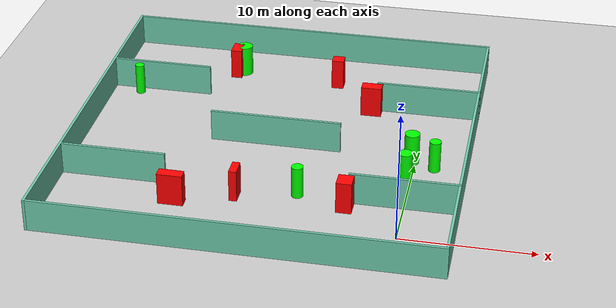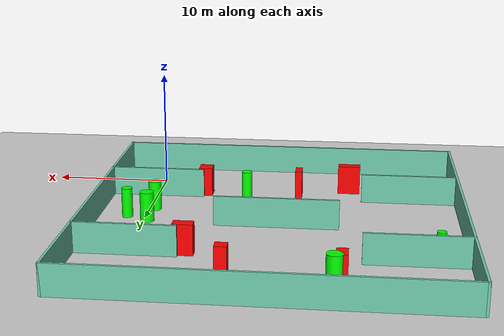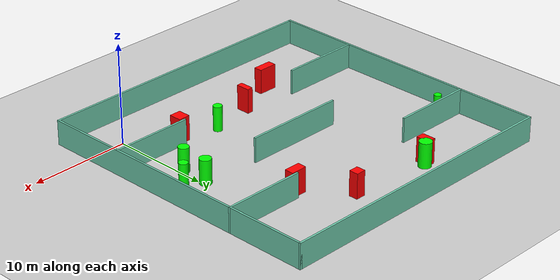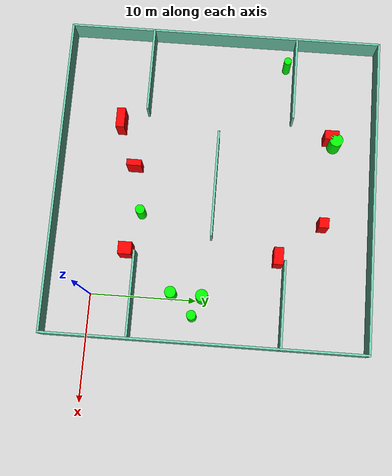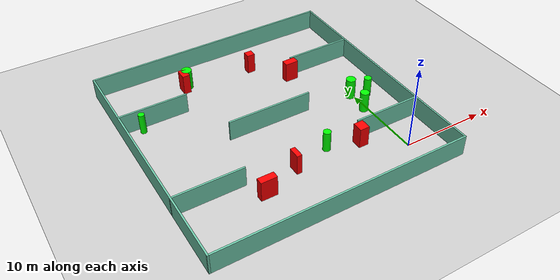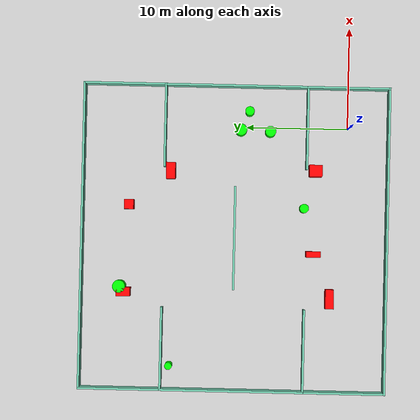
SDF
<sdf version="1.7">
 <world name="default">
  <light name="sun" type="directional">
   <pose>0 0 10 0 -0 0</pose>
   <diffuse>0.8 0.8 0.8 1</diffuse>
   <specular>0.2 0.2 0.2 1</specular>
   <attenuation>
    <range>1000</range>
    <constant>0.9</constant>
    <linear>0.01</linear>
    <quadratic>0.001</quadratic>
   </attenuation>
   <direction>-0.5 0.1 -0.9</direction>
   <spot><inner_angle>0</inner_angle><outer_angle>0</outer_angle><falloff>0</falloff></spot>
  </light>
  <model name="ground_plane">
   <static>1</static>
   <link name="link">
    <collision name="collision">
     <geometry><plane><normal>0 0 1</normal><size>100 100</size></plane></geometry>
     <surface>
      <contact><collide_bitmask>65535</collide_bitmask></contact>
      <friction><ode><mu>100</mu><mu2>50</mu2></ode></friction>
     </surface>
    </collision>
    <visual name="visual">
     <cast_shadows>0</cast_shadows>
     <geometry><plane><normal>0 0 1</normal><size>100 100</size></plane></geometry>
     <material>
      <script><uri>file://media/materials/scripts/gazebo.material</uri><name>Gazebo/Grey</name></script>
     </material>
    </visual>
   </link>
  </model>
  <gravity>0 0 -9.8</gravity>
  <magnetic_field>6e-06 2.3e-05 -4.2e-05</magnetic_field>
  <atmosphere type="adiabatic"/>
  <physics type="ode">
   <max_step_size>0.001</max_step_size>
   <real_time_factor>1</real_time_factor>
   <real_time_update_rate>1000</real_time_update_rate>
  </physics>
  <scene><ambient>0.4 0.4 0.4 1</ambient><background>0.7 0.7 0.7 1</background><shadows>1</shadows></scene>
  <spherical_coordinates>
   <surface_model>EARTH_WGS84</surface_model>
   <latitude_deg>0</latitude_deg>
   <longitude_deg>0</longitude_deg>
   <elevation>0</elevation>
   <heading_deg>0</heading_deg>
  </spherical_coordinates>
  <model name="my_base_walls">
   <link name="Wall_10">
    <collision name="Wall_10_Collision">
     <geometry><box><size>8.2 0.2 2.5</size></box></geometry>
     <pose>0 0 1.25 0 -0 0</pose>
    </collision>
    <visual name="Wall_10_Visual">
     <pose>0 0 1.25 0 -0 0</pose>
     <geometry><box><size>8.2 0.2 2.5</size></box></geometry>
     <material>
      <script><uri>file://media/materials/scripts/gazebo.material</uri><name>Gazebo/Grey</name></script>
      <ambient>0.435294 0.796078 0.67451 1</ambient>
     </material>
     <meta><layer>0</layer></meta>
    </visual>
    <pose>-11 -7 0 0 -0 0</pose>
   </link>
   <link name="Wall_12">
    <collision name="Wall_12_Collision">
     <geometry><box><size>8.2 0.2 2.5</size></box></geometry>
     <pose>0 0 1.25 0 -0 0</pose>
    </collision>
    <visual name="Wall_12_Visual">
     <pose>0 0 1.25 0 -0 0</pose>
     <geometry><box><size>8.2 0.2 2.5</size></box></geometry>
     <material>
      <script><uri>file://media/materials/scripts/gazebo.material</uri><name>Gazebo/Grey</name></script>
      <ambient>0.435294 0.796078 0.67451 1</ambient>
     </material>
     <meta><layer>0</layer></meta>
    </visual>
    <pose>-11 7 0 0 -0 0</pose>
   </link>
   <link name="Wall_14">
    <collision name="Wall_14_Collision">
     <geometry><box><size>8.2 0.2 2.5</size></box></geometry>
     <pose>0 0 1.25 0 -0 0</pose>
    </collision>
    <visual name="Wall_14_Visual">
     <pose>0 0 1.25 0 -0 0</pose>
     <geometry><box><size>8.2 0.2 2.5</size></box></geometry>
     <material>
      <script><uri>file://media/materials/scripts/gazebo.material</uri><name>Gazebo/Grey</name></script>
      <ambient>0.435294 0.796078 0.67451 1</ambient>
     </material>
     <meta><layer>0</layer></meta>
    </visual>
    <pose>11 7 0 0 -0 3.14159</pose>
   </link>
   <link name="Wall_16">
    <collision name="Wall_16_Collision">
     <geometry><box><size>10.2 0.2 2.5</size></box></geometry>
     <pose>0 0 1.25 0 -0 0</pose>
    </collision>
    <visual name="Wall_16_Visual">
     <pose>0 0 1.25 0 -0 0</pose>
     <geometry><box><size>10.2 0.2 2.5</size></box></geometry>
     <material>
      <script><uri>file://media/materials/scripts/gazebo.material</uri><name>Gazebo/Grey</name></script>
      <ambient>0.435294 0.796078 0.67451 1</ambient>
     </material>
     <meta><layer>0</layer></meta>
    </visual>
    <pose>0 0 0 0 -0 3.14159</pose>
   </link>
   <link name="Wall_2">
    <collision name="Wall_2_Collision">
     <geometry><box><size>30.2 0.2 2.5</size></box></geometry>
     <pose>0 0 1.25 0 -0 0</pose>
    </collision>
    <visual name="Wall_2_Visual">
     <pose>0 0 1.25 0 -0 0</pose>
     <geometry><box><size>30.2 0.2 2.5</size></box></geometry>
     <material>
      <script><uri>file://media/materials/scripts/gazebo.material</uri><name>Gazebo/Grey</name></script>
      <ambient>0.435294 0.796078 0.67451 1</ambient>
     </material>
     <meta><layer>0</layer></meta>
    </visual>
    <pose>0 -15 0 0 -0 3.14159</pose>
   </link>
   <link name="Wall_3">
    <collision name="Wall_3_Collision">
     <geometry><box><size>30.2 0.2 2.5</size></box></geometry>
     <pose>0 0 1.25 0 -0 0</pose>
    </collision>
    <visual name="Wall_3_Visual">
     <pose>0 0 1.25 0 -0 0</pose>
     <geometry><box><size>30.2 0.2 2.5</size></box></geometry>
     <material>
      <script><uri>file://media/materials/scripts/gazebo.material</uri><name>Gazebo/Grey</name></script>
      <ambient>0.435294 0.796078 0.67451 1</ambient>
     </material>
     <meta><layer>0</layer></meta>
    </visual>
    <pose>-15 0 0 0 -0 1.5708</pose>
   </link>
   <link name="Wall_4">
    <collision name="Wall_4_Collision">
     <geometry><box><size>30.2 0.2 2.5</size></box></geometry>
     <pose>0 0 1.25 0 -0 0</pose>
    </collision>
    <visual name="Wall_4_Visual">
     <pose>0 0 1.25 0 -0 0</pose>
     <geometry><box><size>30.2 0.2 2.5</size></box></geometry>
     <material>
      <script><uri>file://media/materials/scripts/gazebo.material</uri><name>Gazebo/Grey</name></script>
      <ambient>0.435294 0.796078 0.67451 1</ambient>
     </material>
     <meta><layer>0</layer></meta>
    </visual>
    <pose>0 15 0 0 -0 0</pose>
   </link>
   <link name="Wall_6">
    <collision name="Wall_6_Collision">
     <geometry><box><size>30.2 0.2 2.5</size></box></geometry>
     <pose>0 0 1.25 0 -0 0</pose>
    </collision>
    <visual name="Wall_6_Visual">
     <pose>0 0 1.25 0 -0 0</pose>
     <geometry><box><size>30.2 0.2 2.5</size></box></geometry>
     <material>
      <script><uri>file://media/materials/scripts/gazebo.material</uri><name>Gazebo/Grey</name></script>
      <ambient>0.435294 0.796078 0.67451 1</ambient>
     </material>
     <meta><layer>0</layer></meta>
    </visual>
    <pose>15 0 0 0 -0 1.5708</pose>
   </link>
   <link name="Wall_8">
    <collision name="Wall_8_Collision">
     <geometry><box><size>8.2 0.2 2.5</size></box></geometry>
     <pose>0 0 1.25 0 -0 0</pose>
    </collision>
    <visual name="Wall_8_Visual">
     <pose>0 0 1.25 0 -0 0</pose>
     <geometry><box><size>8.2 0.2 2.5</size></box></geometry>
     <material>
      <script><uri>file://media/materials/scripts/gazebo.material</uri><name>Gazebo/Grey</name></script>
      <ambient>0.435294 0.796078 0.67451 1</ambient>
     </material>
     <meta><layer>0</layer></meta>
    </visual>
    <pose>11 -7 0 0 -0 3.14159</pose>
   </link>
   <static>1</static>
   <pose>-11 11 0 0 -0 0</pose>
  </model>
  <model name="cylinder1">
   <static>1</static>
   <link name="link">
    <inertial>
     <mass>1</mass>
     <inertia><ixx>0.5</ixx><ixy>0</ixy><ixz>0</ixz><iyy>0.5</iyy><iyz>0</iyz><izz>1</izz></inertia>
    </inertial>
    <collision name="collision">
     <geometry><cylinder><radius>0.4456386294573484</radius><length>2.5</length></cylinder></geometry>
    </collision>
    <visual name="visual">
     <geometry><cylinder><radius>0.4456386294573484</radius><length>2.5</length></cylinder></geometry>
     <material>
      <ambient>0 1 0 1</ambient>
      <diffuse>0 1 0 1</diffuse>
      <specular>0.1 0.1 0.1 1</specular>
      <emissive>0 0 0 0</emissive>
     </material>
    </visual>
   </link>
   <pose>1.5292812261973445 9.717126818259276 1.25 0 0 0</pose>
  </model>
  <model name="cylinder2">
   <static>1</static>
   <link name="link">
    <inertial>
     <mass>1</mass>
     <inertia><ixx>0.5</ixx><ixy>0</ixy><ixz>0</ixz><iyy>0.5</iyy><iyz>0</iyz><izz>1</izz></inertia>
    </inertial>
    <collision name="collision">
     <geometry><cylinder><radius>0.44531292203563566</radius><length>2.5</length></cylinder></geometry>
    </collision>
    <visual name="visual">
     <geometry><cylinder><radius>0.44531292203563566</radius><length>2.5</length></cylinder></geometry>
     <material>
      <ambient>0 1 0 1</ambient>
      <diffuse>0 1 0 1</diffuse>
      <specular>0.1 0.1 0.1 1</specular>
      <emissive>0 0 0 0</emissive>
     </material>
    </visual>
   </link>
   <pose>-7.936862512632107 4.191914782025638 1.25 0 0 0</pose>
  </model>
  <model name="cylinder3">
   <static>1</static>
   <link name="link">
    <inertial>
     <mass>1</mass>
     <inertia><ixx>0.5</ixx><ixy>0</ixy><ixz>0</ixz><iyy>0.5</iyy><iyz>0</iyz><izz>1</izz></inertia>
    </inertial>
    <collision name="collision">
     <geometry><cylinder><radius>0.6266930412842626</radius><length>2.5</length></cylinder></geometry>
    </collision>
    <visual name="visual">
     <geometry><cylinder><radius>0.6266930412842626</radius><length>2.5</length></cylinder></geometry>
     <material>
      <ambient>0 1 0 1</ambient>
      <diffuse>0 1 0 1</diffuse>
      <specular>0.1 0.1 0.1 1</specular>
      <emissive>0 0 0 0</emissive>
     </material>
    </visual>
   </link>
   <pose>-15.965332265038363 22.224577644137653 1.25 0 0 0</pose>
  </model>
  <model name="cylinder4">
   <static>1</static>
   <link name="link">
    <inertial>
     <mass>1</mass>
     <inertia><ixx>0.5</ixx><ixy>0</ixy><ixz>0</ixz><iyy>0.5</iyy><iyz>0</iyz><izz>1</izz></inertia>
    </inertial>
    <collision name="collision">
     <geometry><cylinder><radius>0.5761014275932677</radius><length>2.5</length></cylinder></geometry>
    </collision>
    <visual name="visual">
     <geometry><cylinder><radius>0.5761014275932677</radius><length>2.5</length></cylinder></geometry>
     <material>
      <ambient>0 1 0 1</ambient>
      <diffuse>0 1 0 1</diffuse>
      <specular>0.1 0.1 0.1 1</specular>
      <emissive>0 0 0 0</emissive>
     </material>
    </visual>
   </link>
   <pose>-0.31133972802179244 10.542605677727044 1.25 0 0 0</pose>
  </model>
  <model name="cylinder5">
   <static>1</static>
   <link name="link">
    <inertial>
     <mass>1</mass>
     <inertia><ixx>0.5</ixx><ixy>0</ixy><ixz>0</ixz><iyy>0.5</iyy><iyz>0</iyz><izz>1</izz></inertia>
    </inertial>
    <collision name="collision">
     <geometry><cylinder><radius>0.3615455737426825</radius><length>2.5</length></cylinder></geometry>
    </collision>
    <visual name="visual">
     <geometry><cylinder><radius>0.3615455737426825</radius><length>2.5</length></cylinder></geometry>
     <material>
      <ambient>0 1 0 1</ambient>
      <diffuse>0 1 0 1</diffuse>
      <specular>0.1 0.1 0.1 1</specular>
      <emissive>0 0 0 0</emissive>
     </material>
    </visual>
   </link>
   <pose>-23.666276819289276 17.207375518853077 1.25 0 0 0</pose>
  </model>
  <model name="cylinder6">
   <static>1</static>
   <link name="link">
    <inertial>
     <mass>1</mass>
     <inertia><ixx>0.5</ixx><ixy>0</ixy><ixz>0</ixz><iyy>0.5</iyy><iyz>0</iyz><izz>1</izz></inertia>
    </inertial>
    <collision name="collision">
     <geometry><cylinder><radius>0.5272514219149655</radius><length>2.5</length></cylinder></geometry>
    </collision>
    <visual name="visual">
     <geometry><cylinder><radius>0.5272514219149655</radius><length>2.5</length></cylinder></geometry>
     <material>
      <ambient>0 1 0 1</ambient>
      <diffuse>0 1 0 1</diffuse>
      <specular>0.1 0.1 0.1 1</specular>
      <emissive>0 0 0 0</emissive>
     </material>
    </visual>
   </link>
   <pose>-0.4348142796505954 7.643534196259862 1.25 0 0 0</pose>
  </model>
  <model name="box1">
   <static>1</static>
   <link name="link">
    <inertial>
     <mass>1</mass>
     <inertia><ixx>0.083</ixx><ixy>0</ixy><ixz>0</ixz><iyy>0.083</iyy><iyz>0</iyz><izz>0.083</izz></inertia>
    </inertial>
    <collision name="collision">
     <geometry><box><size>1.6222661233023463 0.8963334421472648 2.5</size></box></geometry>
    </collision>
    <visual name="visual">
     <geometry><box><size>1.6222661233023463 0.8963334421472648 2.5</size></box></geometry>
     <material>
      <ambient>1 0 0 1</ambient>
      <diffuse>1 0 0 1</diffuse>
      <specular>0.1 0.1 0.1 1</specular>
      <emissive>0 0 0 0</emissive>
     </material>
    </visual>
    <sensor name="my_contact" type="contact">
     <contact><collision>box_collision</collision><topic>__default_topic__</topic></contact>
    </sensor>
   </link>
   <pose>-4.470224382734202 17.367084895094695 1.25 0 0 0</pose>
  </model>
  <model name="box2">
   <static>1</static>
   <link name="link">
    <inertial>
     <mass>1</mass>
     <inertia><ixx>0.083</ixx><ixy>0</ixy><ixz>0</ixz><iyy>0.083</iyy><iyz>0</iyz><izz>0.083</izz></inertia>
    </inertial>
    <collision name="collision">
     <geometry><box><size>0.9579325828076858 0.9162196533137005 2.5</size></box></geometry>
    </collision>
    <visual name="visual">
     <geometry><box><size>0.9579325828076858 0.9162196533137005 2.5</size></box></geometry>
     <material>
      <ambient>1 0 0 1</ambient>
      <diffuse>1 0 0 1</diffuse>
      <specular>0.1 0.1 0.1 1</specular>
      <emissive>0 0 0 0</emissive>
     </material>
    </visual>
    <sensor name="my_contact" type="contact">
     <contact><collision>box_collision</collision><topic>__default_topic__</topic></contact>
    </sensor>
   </link>
   <pose>-7.874527667024799 21.41128445310145 1.25 0 0 0</pose>
  </model>
  <model name="box3">
   <static>1</static>
   <link name="link">
    <inertial>
     <mass>1</mass>
     <inertia><ixx>0.083</ixx><ixy>0</ixy><ixz>0</ixz><iyy>0.083</iyy><iyz>0</iyz><izz>0.083</izz></inertia>
    </inertial>
    <collision name="collision">
     <geometry><box><size>1.1630928919015573 1.265461050111168 2.5</size></box></geometry>
    </collision>
    <visual name="visual">
     <geometry><box><size>1.1630928919015573 1.265461050111168 2.5</size></box></geometry>
     <material>
      <ambient>1 0 0 1</ambient>
      <diffuse>1 0 0 1</diffuse>
      <specular>0.1 0.1 0.1 1</specular>
      <emissive>0 0 0 0</emissive>
     </material>
    </visual>
    <sensor name="my_contact" type="contact">
     <contact><collision>box_collision</collision><topic>__default_topic__</topic></contact>
    </sensor>
   </link>
   <pose>-4.211111116400621 3.118229679560799 1.25 0 0 0</pose>
  </model>
  <model name="box4">
   <static>1</static>
   <link name="link">
    <inertial>
     <mass>1</mass>
     <inertia><ixx>0.083</ixx><ixy>0</ixy><ixz>0</ixz><iyy>0.083</iyy><iyz>0</iyz><izz>0.083</izz></inertia>
    </inertial>
    <collision name="collision">
     <geometry><box><size>0.5875311518161475 1.40523436092673 2.5</size></box></geometry>
    </collision>
    <visual name="visual">
     <geometry><box><size>0.5875311518161475 1.40523436092673 2.5</size></box></geometry>
     <material>
      <ambient>1 0 0 1</ambient>
      <diffuse>1 0 0 1</diffuse>
      <specular>0.1 0.1 0.1 1</specular>
      <emissive>0 0 0 0</emissive>
     </material>
    </visual>
    <sensor name="my_contact" type="contact">
     <contact><collision>box_collision</collision><topic>__default_topic__</topic></contact>
    </sensor>
   </link>
   <pose>-12.424988319730556 3.209738716903959 1.25 0 0 0</pose>
  </model>
  <model name="box5">
   <static>1</static>
   <link name="link">
    <inertial>
     <mass>1</mass>
     <inertia><ixx>0.083</ixx><ixy>0</ixy><ixz>0</ixz><iyy>0.083</iyy><iyz>0</iyz><izz>0.083</izz></inertia>
    </inertial>
    <collision name="collision">
     <geometry><box><size>1.9040896884725587 0.8164241715665141 2.5</size></box></geometry>
    </collision>
    <visual name="visual">
     <geometry><box><size>1.9040896884725587 0.8164241715665141 2.5</size></box></geometry>
     <material>
      <ambient>1 0 0 1</ambient>
      <diffuse>1 0 0 1</diffuse>
      <specular>0.1 0.1 0.1 1</specular>
      <emissive>0 0 0 0</emissive>
     </material>
    </visual>
    <sensor name="my_contact" type="contact">
     <contact><collision>box_collision</collision><topic>__default_topic__</topic></contact>
    </sensor>
   </link>
   <pose>-16.79762232165163 1.5262004729356562 1.25 0 0 0</pose>
  </model>
  <model name="box6">
   <static>1</static>
   <link name="link">
    <inertial>
     <mass>1</mass>
     <inertia><ixx>0.083</ixx><ixy>0</ixy><ixz>0</ixz><iyy>0.083</iyy><iyz>0</iyz><izz>0.083</izz></inertia>
    </inertial>
    <collision name="collision">
     <geometry><box><size>0.8704608828224766 1.3696816828314538 2.5</size></box></geometry>
    </collision>
    <visual name="visual">
     <geometry><box><size>0.8704608828224766 1.3696816828314538 2.5</size></box></geometry>
     <material>
      <ambient>1 0 0 1</ambient>
      <diffuse>1 0 0 1</diffuse>
      <specular>0.1 0.1 0.1 1</specular>
      <emissive>0 0 0 0</emissive>
     </material>
    </visual>
    <sensor name="my_contact" type="contact">
     <contact><collision>box_collision</collision><topic>__default_topic__</topic></contact>
    </sensor>
   </link>
   <pose>-16.47336795843479 21.816218120221844 1.25 0 0 0</pose>
  </model>
 </world>
</sdf>
